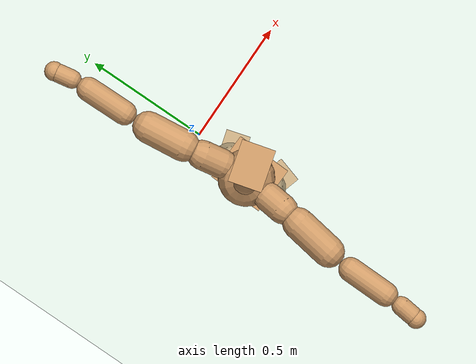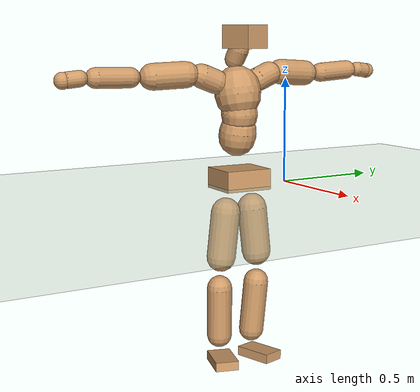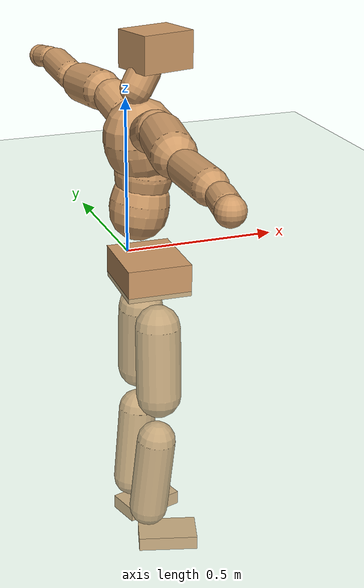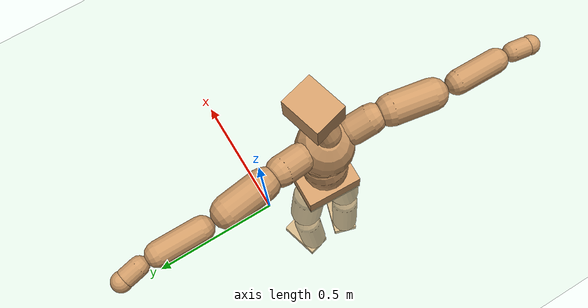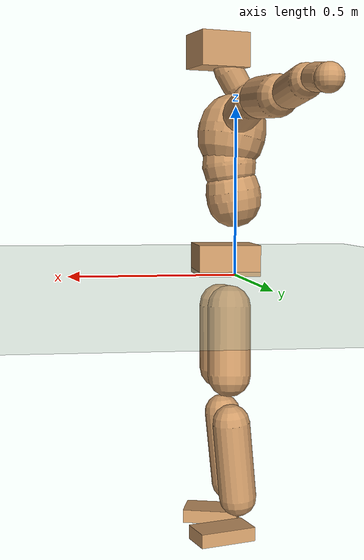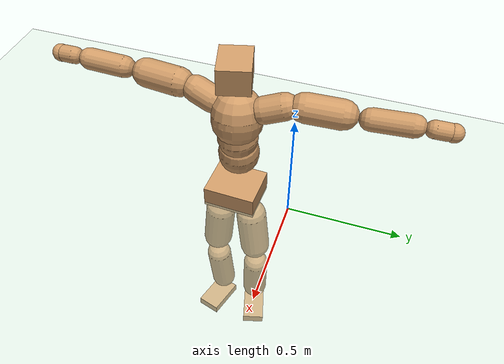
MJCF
<mujoco model="humanoid">
  <compiler coordinate="local" angle="radian"/>
  <default>
    <joint damping="0.0" armature="0.01" stiffness="0.0" limited="true"/>
    <geom conaffinity="1" condim="3" contype="7" margin="0.001" rgba="0.8 0.6 .4 1"/>
  </default>
  <asset>
    <texture type="skybox" builtin="gradient" rgb1=".4 .5 .6" rgb2="0 0 0" width="100" height="100"/>
    <texture builtin="flat" height="1278" mark="cross" markrgb="1 1 1" name="texgeom" random="0.01" rgb1="0.8 0.6 0.4" rgb2="0.8 0.6 0.4" type="cube" width="127"/>
    <texture builtin="checker" height="100" name="texplane" rgb1="0 0 0" rgb2="0.8 0.8 0.8" type="2d" width="100"/>
    <material name="MatPlane" reflectance="0.5" shininess="1" specular="1" texrepeat="60 60" texture="texplane"/>
    <material name="geom" texture="texgeom" texuniform="true"/>
  </asset>
  <worldbody>
    <light cutoff="100" diffuse="1 1 1" dir="-0 0 -1.3" directional="true" exponent="1" pos="0 0 1.3" specular=".1 .1 .1"/>
    <geom conaffinity="1" condim="3" name="floor" pos="0 0 0" rgba="0.8 0.9 0.8 1" size="100 100 .2" type="plane" material="MatPlane"/>
    <body name="Pelvis" pos="-0.0027 -0.2502 0.0406">
      <freejoint name="Pelvis"/>
      <geom type="box" contype="1" conaffinity="1" density="500" pos="-0.0122 0.0004 -0.0080" size="0.0974 0.1153 0.0493" quat="0.9999 0.0000 0.0000 -0.0166" name="Pelvis"/>
      <body name="L_Hip" pos="-0.014 0.0663 -0.0844">
        <joint name="L_Hip_x" type="hinge" pos="0 0 0" axis="1 0 0" stiffness="800" damping="80" armature="0.02" range="-180.0000 180.0000"/>
        <joint name="L_Hip_y" type="hinge" pos="0 0 0" axis="0 1 0" stiffness="800" damping="80" armature="0.02" range="-180.0000 180.0000"/>
        <joint name="L_Hip_z" type="hinge" pos="0 0 0" axis="0 0 1" stiffness="800" damping="80" armature="0.02" range="-180.0000 180.0000"/>
        <geom type="capsule" contype="1" conaffinity="1" density="500" fromto="0.0010 0.0076 -0.0726 0.0041 0.0303 -0.2903" size="0.0696" name="L_Hip"/>
        <body name="L_Knee" pos="0.0052 0.0379 -0.3629">
          <joint name="L_Knee_x" type="hinge" pos="0 0 0" axis="1 0 0" stiffness="800" damping="80" armature="0.02" range="-180.0000 180.0000"/>
          <joint name="L_Knee_y" type="hinge" pos="0 0 0" axis="0 1 0" stiffness="800" damping="80" armature="0.02" range="-180.0000 180.0000"/>
          <joint name="L_Knee_z" type="hinge" pos="0 0 0" axis="0 0 1" stiffness="800" damping="80" armature="0.02" range="-180.0000 180.0000"/>
          <geom type="capsule" contype="1" conaffinity="1" density="500" fromto="-0.0082 -0.0034 -0.0829 -0.0328 -0.0138 -0.3317" size="0.0604" name="L_Knee"/>
          <body name="L_Ankle" pos="-0.0411 -0.0172 -0.4146">
            <joint name="L_Ankle_x" type="hinge" pos="0 0 0" axis="1 0 0" stiffness="800" damping="80" armature="0.02" range="-180.0000 180.0000"/>
            <joint name="L_Ankle_y" type="hinge" pos="0 0 0" axis="0 1 0" stiffness="800" damping="80" armature="0.02" range="-180.0000 180.0000"/>
            <joint name="L_Ankle_z" type="hinge" pos="0 0 0" axis="0 0 1" stiffness="800" damping="80" armature="0.02" range="-180.0000 180.0000"/>
            <geom type="box" contype="1" conaffinity="1" density="500" pos="0.0619 0.0172 -0.0295" size="0.094 0.0521 0.0225" quat="0.9908 0.0000 0.0000 0.1353" name="L_Ankle"/>
            <body name="L_Toe" pos="0.1238 0.0345 -0.0589">
              <joint name="L_Toe_x" type="hinge" pos="0 0 0" axis="1 0 0" stiffness="500" damping="50" armature="0.02" range="-180.0000 180.0000"/>
              <joint name="L_Toe_y" type="hinge" pos="0 0 0" axis="0 1 0" stiffness="500" damping="50" armature="0.02" range="-180.0000 180.0000"/>
              <joint name="L_Toe_z" type="hinge" pos="0 0 0" axis="0 0 1" stiffness="500" damping="50" armature="0.02" range="-180.0000 180.0000"/>
              <geom type="box" contype="1" conaffinity="1" density="500" pos="0.0000 0.0000 0.0275" size="0.0011 0.0026 0.001" quat="0.9901 0.0000 0.0000 0.1406" name="L_Toe"/>
            </body>
          </body>
        </body>
      </body>
      <body name="R_Hip" pos="-0.0087 -0.0683 -0.0923">
        <joint name="R_Hip_x" type="hinge" pos="0 0 0" axis="1 0 0" stiffness="800" damping="80" armature="0.02" range="-180.0000 180.0000"/>
        <joint name="R_Hip_y" type="hinge" pos="0 0 0" axis="0 1 0" stiffness="800" damping="80" armature="0.02" range="-180.0000 180.0000"/>
        <joint name="R_Hip_z" type="hinge" pos="0 0 0" axis="0 0 1" stiffness="800" damping="80" armature="0.02" range="-180.0000 180.0000"/>
        <geom type="capsule" contype="1" conaffinity="1" density="500" fromto="-0.0017 -0.0075 -0.0728 -0.0067 -0.0298 -0.2912" size="0.0692" name="R_Hip"/>
        <body name="R_Knee" pos="-0.0084 -0.0373 -0.364">
          <joint name="R_Knee_x" type="hinge" pos="0 0 0" axis="1 0 0" stiffness="800" damping="80" armature="0.02" range="-180.0000 180.0000"/>
          <joint name="R_Knee_y" type="hinge" pos="0 0 0" axis="0 1 0" stiffness="800" damping="80" armature="0.02" range="-180.0000 180.0000"/>
          <joint name="R_Knee_z" type="hinge" pos="0 0 0" axis="0 0 1" stiffness="800" damping="80" armature="0.02" range="-180.0000 180.0000"/>
          <geom type="capsule" contype="1" conaffinity="1" density="500" fromto="-0.0077 0.0039 -0.0814 -0.0308 0.0158 -0.3256" size="0.0602" name="R_Knee"/>
          <body name="R_Ankle" pos="-0.0385 0.0197 -0.407">
            <joint name="R_Ankle_x" type="hinge" pos="0 0 0" axis="1 0 0" stiffness="800" damping="80" armature="0.02" range="-180.0000 180.0000"/>
            <joint name="R_Ankle_y" type="hinge" pos="0 0 0" axis="0 1 0" stiffness="800" damping="80" armature="0.02" range="-180.0000 180.0000"/>
            <joint name="R_Ankle_z" type="hinge" pos="0 0 0" axis="0 0 1" stiffness="800" damping="80" armature="0.02" range="-180.0000 180.0000"/>
            <geom type="box" contype="1" conaffinity="1" density="500" pos="0.0660 -0.0195 -0.0292" size="0.0922 0.0557 0.0218" quat="0.9897 0.0000 0.0000 -0.1431" name="R_Ankle"/>
            <body name="R_Toe" pos="0.1321 -0.039 -0.0585">
              <joint name="R_Toe_x" type="hinge" pos="0 0 0" axis="1 0 0" stiffness="500" damping="50" armature="0.02" range="-180.0000 180.0000"/>
              <joint name="R_Toe_y" type="hinge" pos="0 0 0" axis="0 1 0" stiffness="500" damping="50" armature="0.02" range="-180.0000 180.0000"/>
              <joint name="R_Toe_z" type="hinge" pos="0 0 0" axis="0 0 1" stiffness="500" damping="50" armature="0.02" range="-180.0000 180.0000"/>
              <geom type="box" contype="1" conaffinity="1" density="500" pos="0.0000 0.0000 0.0292" size="0.0012 0.0027 0.0011" quat="0.9909 0.0000 0.0000 -0.1343" name="R_Toe"/>
            </body>
          </body>
        </body>
      </body>
      <body name="Torso" pos="-0.0503 0.0045 0.1286">
        <joint name="Torso_x" type="hinge" pos="0 0 0" axis="1 0 0" stiffness="1000" damping="100" armature="0.02" range="-180.0000 180.0000"/>
        <joint name="Torso_y" type="hinge" pos="0 0 0" axis="0 1 0" stiffness="1000" damping="100" armature="0.02" range="-180.0000 180.0000"/>
        <joint name="Torso_z" type="hinge" pos="0 0 0" axis="0 0 1" stiffness="1000" damping="100" armature="0.02" range="-180.0000 180.0000"/>
        <geom type="capsule" contype="1" conaffinity="1" density="500" fromto="0.0146 0.0026 0.0838 0.0097 0.0018 0.0559" size="0.0889" name="Torso"/>
        <body name="Spine" pos="0.0243 0.0044 0.1397">
          <joint name="Spine_x" type="hinge" pos="0 0 0" axis="1 0 0" stiffness="1000" damping="100" armature="0.02" range="-180.0000 180.0000"/>
          <joint name="Spine_y" type="hinge" pos="0 0 0" axis="0 1 0" stiffness="1000" damping="100" armature="0.02" range="-180.0000 180.0000"/>
          <joint name="Spine_z" type="hinge" pos="0 0 0" axis="0 0 1" stiffness="1000" damping="100" armature="0.02" range="-180.0000 180.0000"/>
          <geom type="capsule" contype="1" conaffinity="1" density="500" fromto="0.0038 -0.0014 0.0342 0.0025 -0.0009 0.0228" size="0.0872" name="Spine"/>
          <body name="Chest" pos="0.0064 -0.0023 0.057">
            <joint name="Chest_x" type="hinge" pos="0 0 0" axis="1 0 0" stiffness="1000" damping="100" armature="0.02" range="-180.0000 180.0000"/>
            <joint name="Chest_y" type="hinge" pos="0 0 0" axis="0 1 0" stiffness="1000" damping="100" armature="0.02" range="-180.0000 180.0000"/>
            <joint name="Chest_z" type="hinge" pos="0 0 0" axis="0 0 1" stiffness="1000" damping="100" armature="0.02" range="-180.0000 180.0000"/>
            <geom type="capsule" contype="1" conaffinity="1" density="500" fromto="-0.0155 -0.0043 0.0880 -0.0103 -0.0029 0.0587" size="0.1097" name="Chest"/>
            <body name="Neck" pos="-0.0381 -0.0121 0.2105">
              <joint name="Neck_x" type="hinge" pos="0 0 0" axis="1 0 0" stiffness="500" damping="50" armature="0.02" range="-180.0000 180.0000"/>
              <joint name="Neck_y" type="hinge" pos="0 0 0" axis="0 1 0" stiffness="500" damping="50" armature="0.02" range="-180.0000 180.0000"/>
              <joint name="Neck_z" type="hinge" pos="0 0 0" axis="0 0 1" stiffness="500" damping="50" armature="0.02" range="-180.0000 180.0000"/>
              <geom type="capsule" contype="1" conaffinity="1" density="500" fromto="0.0097 0.0023 0.0159 0.0387 0.0091 0.0635" size="0.0472" name="Neck"/>
              <body name="Head" pos="0.0483 0.0114 0.0794">
                <joint name="Head_x" type="hinge" pos="0 0 0" axis="1 0 0" stiffness="500" damping="50" armature="0.02" range="-180.0000 180.0000"/>
                <joint name="Head_y" type="hinge" pos="0 0 0" axis="0 1 0" stiffness="500" damping="50" armature="0.02" range="-180.0000 180.0000"/>
                <joint name="Head_z" type="hinge" pos="0 0 0" axis="0 0 1" stiffness="500" damping="50" armature="0.02" range="-180.0000 180.0000"/>
                <geom type="box" contype="1" conaffinity="1" density="500" pos="0.0252 0.0067 0.0407" size="0.0825 0.0663 0.0544" quat="0.9915 0.0000 0.0000 0.1299" name="Head"/>
              </body>
            </body>
            <body name="L_Thorax" pos="-0.0161 0.0782 0.1163">
              <joint name="L_Thorax_x" type="hinge" pos="0 0 0" axis="1 0 0" stiffness="500" damping="50" armature="0.02" range="-180.0000 180.0000"/>
              <joint name="L_Thorax_y" type="hinge" pos="0 0 0" axis="0 1 0" stiffness="500" damping="50" armature="0.02" range="-180.0000 180.0000"/>
              <joint name="L_Thorax_z" type="hinge" pos="0 0 0" axis="0 0 1" stiffness="500" damping="50" armature="0.02" range="-180.0000 180.0000"/>
              <geom type="capsule" contype="1" conaffinity="1" density="500" fromto="-0.0049 0.0267 0.0094 -0.0194 0.1069 0.0377" size="0.0575" name="L_Thorax"/>
              <body name="L_Shoulder" pos="-0.0243 0.1336 0.0471">
                <joint name="L_Shoulder_x" type="hinge" pos="0 0 0" axis="1 0 0" stiffness="500" damping="50" armature="0.02" range="-720.0000 720.0000"/>
                <joint name="L_Shoulder_y" type="hinge" pos="0 0 0" axis="0 1 0" stiffness="500" damping="50" armature="0.02" range="-720.0000 720.0000"/>
                <joint name="L_Shoulder_z" type="hinge" pos="0 0 0" axis="0 0 1" stiffness="500" damping="50" armature="0.02" range="-720.0000 720.0000"/>
                <geom type="capsule" contype="1" conaffinity="1" density="500" fromto="-0.0058 0.0502 -0.0031 -0.0233 0.2010 -0.0123" size="0.0616" name="L_Shoulder"/>
                <body name="L_Elbow" pos="-0.0291 0.2512 -0.0154">
                  <joint name="L_Elbow_x" type="hinge" pos="0 0 0" axis="1 0 0" stiffness="500" damping="50" armature="0.02" range="-720.0000 720.0000"/>
                  <joint name="L_Elbow_y" type="hinge" pos="0 0 0" axis="0 1 0" stiffness="500" damping="50" armature="0.02" range="-720.0000 720.0000"/>
                  <joint name="L_Elbow_z" type="hinge" pos="0 0 0" axis="0 0 1" stiffness="500" damping="50" armature="0.02" range="-720.0000 720.0000"/>
                  <geom type="capsule" contype="1" conaffinity="1" density="500" fromto="-0.0008 0.0547 0.0032 -0.0032 0.2187 0.0130" size="0.0467" name="L_Elbow"/>
                  <body name="L_Wrist" pos="-0.004 0.2734 0.0162">
                    <joint name="L_Wrist_x" type="hinge" pos="0 0 0" axis="1 0 0" stiffness="300" damping="30" armature="0.02" range="-180.0000 180.0000"/>
                    <joint name="L_Wrist_y" type="hinge" pos="0 0 0" axis="0 1 0" stiffness="300" damping="30" armature="0.02" range="-180.0000 180.0000"/>
                    <joint name="L_Wrist_z" type="hinge" pos="0 0 0" axis="0 0 1" stiffness="300" damping="30" armature="0.02" range="-180.0000 180.0000"/>
                    <geom type="capsule" contype="1" conaffinity="1" density="500" fromto="-0.0033 0.0184 -0.0023 -0.0132 0.0735 -0.0093" size="0.0364" name="L_Wrist"/>
                    <body name="L_Hand" pos="-0.0165 0.0918 -0.0116">
                      <joint name="L_Hand_x" type="hinge" pos="0 0 0" axis="1 0 0" stiffness="300" damping="30" armature="0.02" range="-180.0000 180.0000"/>
                      <joint name="L_Hand_y" type="hinge" pos="0 0 0" axis="0 1 0" stiffness="300" damping="30" armature="0.02" range="-180.0000 180.0000"/>
                      <joint name="L_Hand_z" type="hinge" pos="0 0 0" axis="0 0 1" stiffness="300" damping="30" armature="0.02" range="-180.0000 180.0000"/>
                      <geom type="sphere" contype="1" conaffinity="1" density="500" size="0.0377" pos="0.0000 0.0000 0.0000" name="L_Hand"/>
                    </body>
                  </body>
                </body>
              </body>
            </body>
            <body name="R_Thorax" pos="-0.0231 -0.0878 0.1131">
              <joint name="R_Thorax_x" type="hinge" pos="0 0 0" axis="1 0 0" stiffness="500" damping="50" armature="0.02" range="-180.0000 180.0000"/>
              <joint name="R_Thorax_y" type="hinge" pos="0 0 0" axis="0 1 0" stiffness="500" damping="50" armature="0.02" range="-180.0000 180.0000"/>
              <joint name="R_Thorax_z" type="hinge" pos="0 0 0" axis="0 0 1" stiffness="500" damping="50" armature="0.02" range="-180.0000 180.0000"/>
              <geom type="capsule" contype="1" conaffinity="1" density="500" fromto="-0.0025 -0.0246 0.0098 -0.0102 -0.0983 0.0391" size="0.057" name="R_Thorax"/>
              <body name="R_Shoulder" pos="-0.0127 -0.1229 0.0489">
                <joint name="R_Shoulder_x" type="hinge" pos="0 0 0" axis="1 0 0" stiffness="500" damping="50" armature="0.02" range="-720.0000 720.0000"/>
                <joint name="R_Shoulder_y" type="hinge" pos="0 0 0" axis="0 1 0" stiffness="500" damping="50" armature="0.02" range="-720.0000 720.0000"/>
                <joint name="R_Shoulder_z" type="hinge" pos="0 0 0" axis="0 0 1" stiffness="500" damping="50" armature="0.02" range="-720.0000 720.0000"/>
                <geom type="capsule" contype="1" conaffinity="1" density="500" fromto="-0.0081 -0.0523 -0.0023 -0.0324 -0.2090 -0.0091" size="0.0618" name="R_Shoulder"/>
                <body name="R_Elbow" pos="-0.0405 -0.2613 -0.0113">
                  <joint name="R_Elbow_x" type="hinge" pos="0 0 0" axis="1 0 0" stiffness="500" damping="50" armature="0.02" range="-720.0000 720.0000"/>
                  <joint name="R_Elbow_y" type="hinge" pos="0 0 0" axis="0 1 0" stiffness="500" damping="50" armature="0.02" range="-720.0000 720.0000"/>
                  <joint name="R_Elbow_z" type="hinge" pos="0 0 0" axis="0 0 1" stiffness="500" damping="50" armature="0.02" range="-720.0000 720.0000"/>
                  <geom type="capsule" contype="1" conaffinity="1" density="500" fromto="-0.0008 -0.0545 0.0009 -0.0033 -0.2180 0.0036" size="0.047" name="R_Elbow"/>
                  <body name="R_Wrist" pos="-0.0041 -0.2726 0.0045">
                    <joint name="R_Wrist_x" type="hinge" pos="0 0 0" axis="1 0 0" stiffness="300" damping="30" armature="0.02" range="-180.0000 180.0000"/>
                    <joint name="R_Wrist_y" type="hinge" pos="0 0 0" axis="0 1 0" stiffness="300" damping="30" armature="0.02" range="-180.0000 180.0000"/>
                    <joint name="R_Wrist_z" type="hinge" pos="0 0 0" axis="0 0 1" stiffness="300" damping="30" armature="0.02" range="-180.0000 180.0000"/>
                    <geom type="capsule" contype="1" conaffinity="1" density="500" fromto="-0.0021 -0.0188 -0.0019 -0.0086 -0.0752 -0.0077" size="0.0371" name="R_Wrist"/>
                    <body name="R_Hand" pos="-0.0107 -0.0939 -0.0096">
                      <joint name="R_Hand_x" type="hinge" pos="0 0 0" axis="1 0 0" stiffness="300" damping="30" armature="0.02" range="-180.0000 180.0000"/>
                      <joint name="R_Hand_y" type="hinge" pos="0 0 0" axis="0 1 0" stiffness="300" damping="30" armature="0.02" range="-180.0000 180.0000"/>
                      <joint name="R_Hand_z" type="hinge" pos="0 0 0" axis="0 0 1" stiffness="300" damping="30" armature="0.02" range="-180.0000 180.0000"/>
                      <geom type="sphere" contype="1" conaffinity="1" density="500" size="0.0382" pos="0.0000 0.0000 0.0000" name="R_Hand"/>
                    </body>
                  </body>
                </body>
              </body>
            </body>
          </body>
        </body>
      </body>
    </body>
  </worldbody>
  <actuator>
    <motor name="L_Hip_x" joint="L_Hip_x" gear="500"/>
    <motor name="L_Hip_y" joint="L_Hip_y" gear="500"/>
    <motor name="L_Hip_z" joint="L_Hip_z" gear="500"/>
    <motor name="L_Knee_x" joint="L_Knee_x" gear="500"/>
    <motor name="L_Knee_y" joint="L_Knee_y" gear="500"/>
    <motor name="L_Knee_z" joint="L_Knee_z" gear="500"/>
    <motor name="L_Ankle_x" joint="L_Ankle_x" gear="500"/>
    <motor name="L_Ankle_y" joint="L_Ankle_y" gear="500"/>
    <motor name="L_Ankle_z" joint="L_Ankle_z" gear="500"/>
    <motor name="L_Toe_x" joint="L_Toe_x" gear="500"/>
    <motor name="L_Toe_y" joint="L_Toe_y" gear="500"/>
    <motor name="L_Toe_z" joint="L_Toe_z" gear="500"/>
    <motor name="R_Hip_x" joint="R_Hip_x" gear="500"/>
    <motor name="R_Hip_y" joint="R_Hip_y" gear="500"/>
    <motor name="R_Hip_z" joint="R_Hip_z" gear="500"/>
    <motor name="R_Knee_x" joint="R_Knee_x" gear="500"/>
    <motor name="R_Knee_y" joint="R_Knee_y" gear="500"/>
    <motor name="R_Knee_z" joint="R_Knee_z" gear="500"/>
    <motor name="R_Ankle_x" joint="R_Ankle_x" gear="500"/>
    <motor name="R_Ankle_y" joint="R_Ankle_y" gear="500"/>
    <motor name="R_Ankle_z" joint="R_Ankle_z" gear="500"/>
    <motor name="R_Toe_x" joint="R_Toe_x" gear="500"/>
    <motor name="R_Toe_y" joint="R_Toe_y" gear="500"/>
    <motor name="R_Toe_z" joint="R_Toe_z" gear="500"/>
    <motor name="Torso_x" joint="Torso_x" gear="500"/>
    <motor name="Torso_y" joint="Torso_y" gear="500"/>
    <motor name="Torso_z" joint="Torso_z" gear="500"/>
    <motor name="Spine_x" joint="Spine_x" gear="500"/>
    <motor name="Spine_y" joint="Spine_y" gear="500"/>
    <motor name="Spine_z" joint="Spine_z" gear="500"/>
    <motor name="Chest_x" joint="Chest_x" gear="500"/>
    <motor name="Chest_y" joint="Chest_y" gear="500"/>
    <motor name="Chest_z" joint="Chest_z" gear="500"/>
    <motor name="Neck_x" joint="Neck_x" gear="500"/>
    <motor name="Neck_y" joint="Neck_y" gear="500"/>
    <motor name="Neck_z" joint="Neck_z" gear="500"/>
    <motor name="Head_x" joint="Head_x" gear="500"/>
    <motor name="Head_y" joint="Head_y" gear="500"/>
    <motor name="Head_z" joint="Head_z" gear="500"/>
    <motor name="L_Thorax_x" joint="L_Thorax_x" gear="500"/>
    <motor name="L_Thorax_y" joint="L_Thorax_y" gear="500"/>
    <motor name="L_Thorax_z" joint="L_Thorax_z" gear="500"/>
    <motor name="L_Shoulder_x" joint="L_Shoulder_x" gear="500"/>
    <motor name="L_Shoulder_y" joint="L_Shoulder_y" gear="500"/>
    <motor name="L_Shoulder_z" joint="L_Shoulder_z" gear="500"/>
    <motor name="L_Elbow_x" joint="L_Elbow_x" gear="500"/>
    <motor name="L_Elbow_y" joint="L_Elbow_y" gear="500"/>
    <motor name="L_Elbow_z" joint="L_Elbow_z" gear="500"/>
    <motor name="L_Wrist_x" joint="L_Wrist_x" gear="500"/>
    <motor name="L_Wrist_y" joint="L_Wrist_y" gear="500"/>
    <motor name="L_Wrist_z" joint="L_Wrist_z" gear="500"/>
    <motor name="L_Hand_x" joint="L_Hand_x" gear="500"/>
    <motor name="L_Hand_y" joint="L_Hand_y" gear="500"/>
    <motor name="L_Hand_z" joint="L_Hand_z" gear="500"/>
    <motor name="R_Thorax_x" joint="R_Thorax_x" gear="500"/>
    <motor name="R_Thorax_y" joint="R_Thorax_y" gear="500"/>
    <motor name="R_Thorax_z" joint="R_Thorax_z" gear="500"/>
    <motor name="R_Shoulder_x" joint="R_Shoulder_x" gear="500"/>
    <motor name="R_Shoulder_y" joint="R_Shoulder_y" gear="500"/>
    <motor name="R_Shoulder_z" joint="R_Shoulder_z" gear="500"/>
    <motor name="R_Elbow_x" joint="R_Elbow_x" gear="500"/>
    <motor name="R_Elbow_y" joint="R_Elbow_y" gear="500"/>
    <motor name="R_Elbow_z" joint="R_Elbow_z" gear="500"/>
    <motor name="R_Wrist_x" joint="R_Wrist_x" gear="500"/>
    <motor name="R_Wrist_y" joint="R_Wrist_y" gear="500"/>
    <motor name="R_Wrist_z" joint="R_Wrist_z" gear="500"/>
    <motor name="R_Hand_x" joint="R_Hand_x" gear="500"/>
    <motor name="R_Hand_y" joint="R_Hand_y" gear="500"/>
    <motor name="R_Hand_z" joint="R_Hand_z" gear="500"/>
  </actuator>
  <contact>
    <exclude body1="Torso" body2="Chest"/>
    <exclude body1="Head" body2="Chest"/>
    <exclude body1="R_Knee" body2="R_Toe"/>
    <exclude body1="R_Knee" body2="L_Ankle"/>
    <exclude body1="R_Knee" body2="L_Toe"/>
    <exclude body1="L_Knee" body2="L_Toe"/>
    <exclude body1="L_Knee" body2="R_Ankle"/>
    <exclude body1="L_Knee" body2="R_Toe"/>
    <exclude body1="L_Shoulder" body2="Chest"/>
    <exclude body1="R_Shoulder" body2="Chest"/>
  </contact>
  <sensor/>
  <size njmax="700" nconmax="700"/>
</mujoco>
